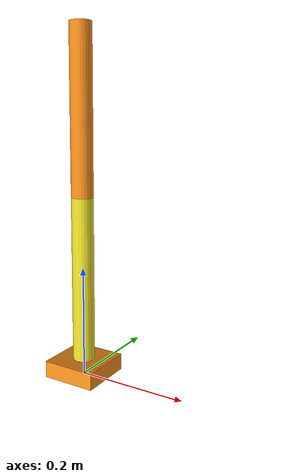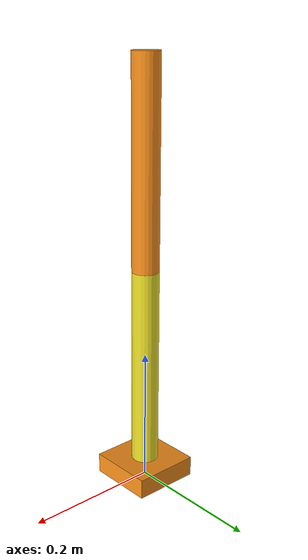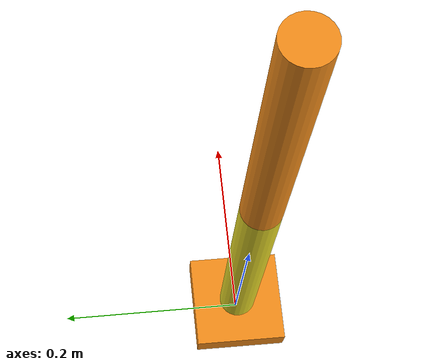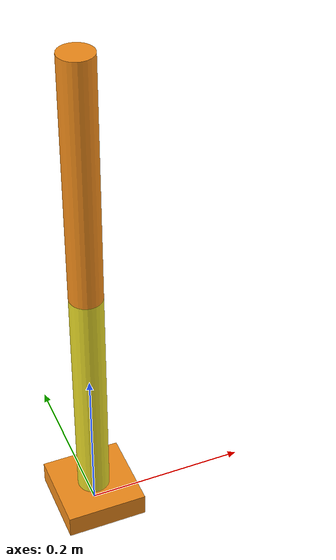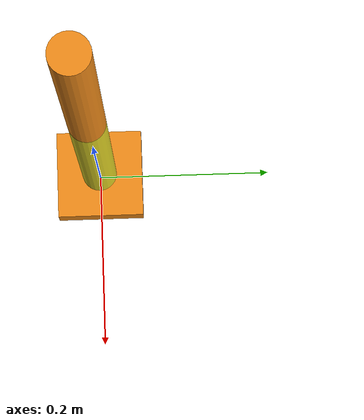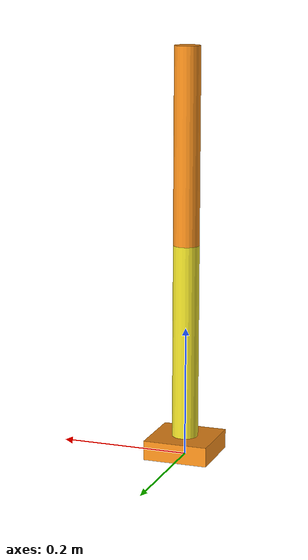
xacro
<?xml version="1.0"?>
<robot xmlns:xacro="http://www.ros.org/wiki/xacro">

    <xacro:property name="arm_base_length" value="0.1" />
    <xacro:property name="arm_base_width" value="0.1" />
    <xacro:property name="arm_base_height" value ="0.03" />

    <xacro:property name="forearm_radius" value="0.02" />
    <xacro:property name="forearm_length" value="0.3" />

    <xacro:property name="hand_radius" value="0.02" />
    <xacro:property name="hand_length" value="0.3" />

    <link name="arm_base_link">
        <visual>
            <geometry>
                <box size="${arm_base_length} ${arm_base_width} ${arm_base_height}" />
            </geometry>
            <origin xyz="0 0 ${arm_base_height / 2.0}" rpy="0 0 0" />
            <material name="orange" />
        </visual>
        <collision>
        <geometry>
            <box size="${arm_base_length} ${arm_base_width} ${arm_base_height}" />
            </geometry>
            <origin xyz="0 0 ${arm_base_height / 2.0}" rpy="0 0 0" />
        </collision>
        <xacro:box_inertia m="5.0" x="${arm_base_length}" y="${arm_base_width}" z="${arm_base_height}"
                           o_xyz="0 0 ${arm_base_height / 2.0}" o_rpy="0 0 0" />
    </link>

    <link name="forearm_link">
        <visual>
            <geometry>
                <cylinder radius="${forearm_radius}" length="${forearm_length}" />
            </geometry>
            <origin xyz="0 0 ${forearm_length/2}" rpy="0 0 0" />
            <material name="yellow" />
        </visual>
        <collision>
            <geometry>
                <cylinder radius="${forearm_radius}" length="${forearm_length}" />
            </geometry>
            <origin xyz="0 0 ${forearm_length/2}" rpy="0 0 0" />
        </collision>
        <xacro:cylinder_inertia m="0.3" r="${forearm_radius}" l="${forearm_length}"
                                o_xyz="0 0 ${forearm_length / 2.0}" o_rpy="0 0 0" />
    </link>

    <link name="hand_link">
        <visual>
            <geometry>
                <cylinder radius="${hand_radius}" length="${hand_length}" />
            </geometry>
            <origin xyz="0 0 ${hand_length/2}" rpy="0 0 0" />
            <material name="orange" />
        </visual>
        <collision>
            <geometry>
                <cylinder radius="${hand_radius}" length="${hand_length}" />
            </geometry>
            <origin xyz="0 0 ${hand_length/2}" rpy="0 0 0" />
        </collision>
        <xacro:cylinder_inertia m="0.3" r="${hand_radius}" l="${hand_length}"
                                o_xyz="0 0 ${hand_length / 2.0}" o_rpy="0 0 0" />
    </link>

    <!-- Joint -->
    <joint name="arm_base_forearm_joint" type="revolute">
        <parent link="arm_base_link" />
        <child link="forearm_link" />
        <origin xyz="0 0 ${arm_base_height}" rpy="0 0 0" />
        <axis xyz="0 1 0" />
        <limit lower="0" upper="${pi/2}" effort="100" velocity="100" />
        <dynamics friction="0.3" damping="0.3" />
    </joint>

    <joint name="forearm_hand_joint" type="revolute">
        <parent link="forearm_link" />
        <child link="hand_link" />
        <origin xyz="0 0 ${forearm_length}" rpy="0 0 0" />
        <axis xyz="0 1 0" />
        <limit lower="0" upper="${pi/2}" effort="100" velocity="100" />
        <dynamics friction="0.3" damping="0.3" />
    </joint>

    <!-- Gazebo -->

</robot>
